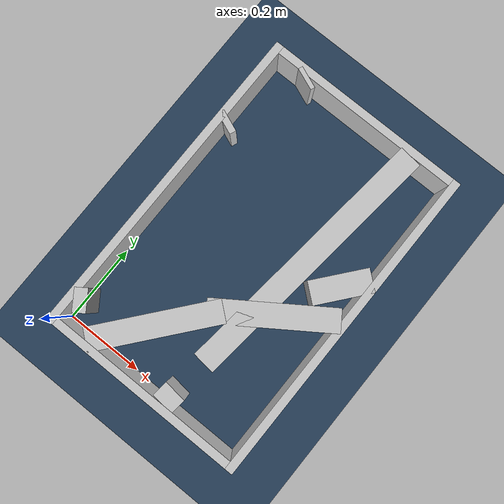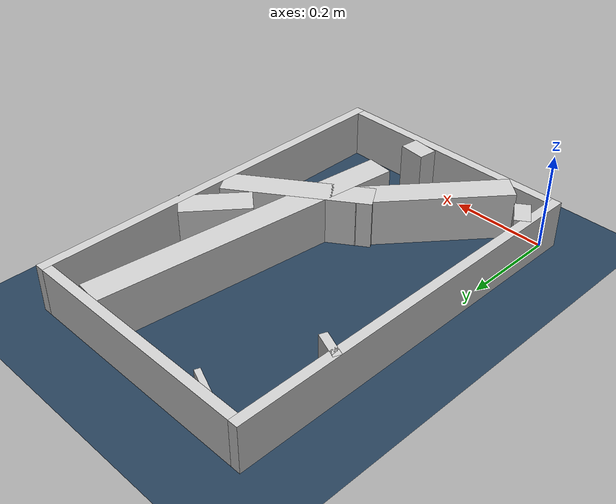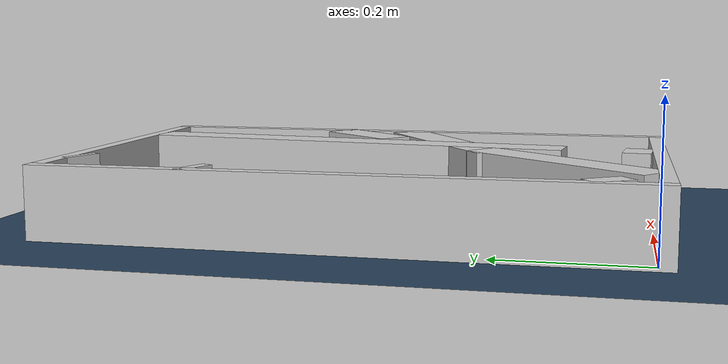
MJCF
<?xml version="1.0" ?>
<mujoco model="generated_real_template">
  <compiler angle="degree"/>
  <option timestep="0.002" integrator="implicitfast" iterations="100" cone="elliptic"/>
  <default>
    <geom density="1"/>
  </default>
  <asset>
    <texture builtin="gradient" height="3072" rgb1="0.3 0.5 0.7" rgb2="0 0 0" type="skybox" width="512"/>
    <texture builtin="checker" height="300" mark="edge" markrgb="0.8 0.8 0.8" name="groundplane" rgb1="0.2 0.3 0.4" rgb2="0.1 0.2 0.3" type="2d" width="300"/>
    <material name="groundplane" reflectance="0.2" texrepeat="5 5" texture="groundplane" texuniform="true"/>
  </asset>
  <worldbody>
    <light dir="0 0 -1" directional="true" pos="0 0 1.5"/>
    <geom name="floor" type="plane" condim="4" friction="0.5 0.005 0.001" material="groundplane" size="0 0 0.05"/>
    <body name="walls">
      <geom name="wall_boundary_left" type="box" condim="4" friction="1.0 0.005 0.0001" rgba="0.8 0.8 0.8 1" pos="-0.010000 0.387500 0.050000" euler="0 0 0.000000" size="0.010000 0.407500 0.050000"/>
      <geom name="wall_boundary_right" type="box" condim="4" friction="1.0 0.005 0.0001" rgba="0.8 0.8 0.8 1" pos="0.500000 0.387500 0.050000" euler="0 0 0.000000" size="0.010000 0.407500 0.050000"/>
      <geom name="wall_boundary_bottom" type="box" condim="4" friction="1.0 0.005 0.0001" rgba="0.8 0.8 0.8 1" pos="0.245000 -0.010000 0.050000" euler="0 0 0.000000" size="0.245000 0.010000 0.050000"/>
      <geom name="wall_boundary_top" type="box" condim="4" friction="1.0 0.005 0.0001" rgba="0.8 0.8 0.8 1" pos="0.245000 0.785000 0.050000" euler="0 0 0.000000" size="0.245000 0.010000 0.050000"/>
      <geom name="wall_inner_1_1" type="box" condim="4" friction="1.0 0.005 0.0001" rgba="0.8 0.8 0.8 1" pos="0.012934 0.059231 0.050000" euler="0 0 34.449585" size="0.015685 0.028500 0.050000"/>
      <geom name="wall_inner_1_2" type="box" condim="4" friction="1.0 0.005 0.0001" rgba="0.8 0.8 0.8 1" pos="0.366694 0.301906 0.050000" euler="0 0 34.449585" size="0.149529 0.028500 0.050000"/>
      <geom name="wall_inner_2_1" type="box" condim="4" friction="1.0 0.005 0.0001" rgba="0.8 0.8 0.8 1" pos="0.086488 0.769792 0.050000" euler="0 0 -111.617037" size="0.005602 0.028500 0.050000"/>
      <geom name="wall_inner_2_2" type="box" condim="4" friction="1.0 0.005 0.0001" rgba="0.8 0.8 0.8 1" pos="0.009546 0.575629 0.050000" euler="0 0 -111.617037" size="0.008278 0.028500 0.050000"/>
      <geom name="wall_inner_3_1" type="box" condim="4" friction="1.0 0.005 0.0001" rgba="0.8 0.8 0.8 1" pos="0.347786 0.449611 0.050000" euler="0 0 -96.277305" size="0.327352 0.028500 0.050000"/>
      <geom name="wall_inner_3_2" type="box" condim="4" friction="1.0 0.005 0.0001" rgba="0.8 0.8 0.8 1" pos="0.300510 0.019826 0.050000" euler="0 0 -96.277305" size="0.019946 0.028500 0.050000"/>
      <geom name="wall_inner_4_1" type="box" condim="4" friction="1.0 0.005 0.0001" rgba="0.8 0.8 0.8 1" pos="0.176456 0.120454 0.050000" euler="0 0 50.665722" size="0.155734 0.028500 0.050000"/>
      <geom name="wall_inner_4_2" type="box" condim="4" friction="1.0 0.005 0.0001" rgba="0.8 0.8 0.8 1" pos="0.442842 0.445518 0.050000" euler="0 0 50.665722" size="0.071174 0.028500 0.050000"/>
    </body>
  </worldbody>
</mujoco>
